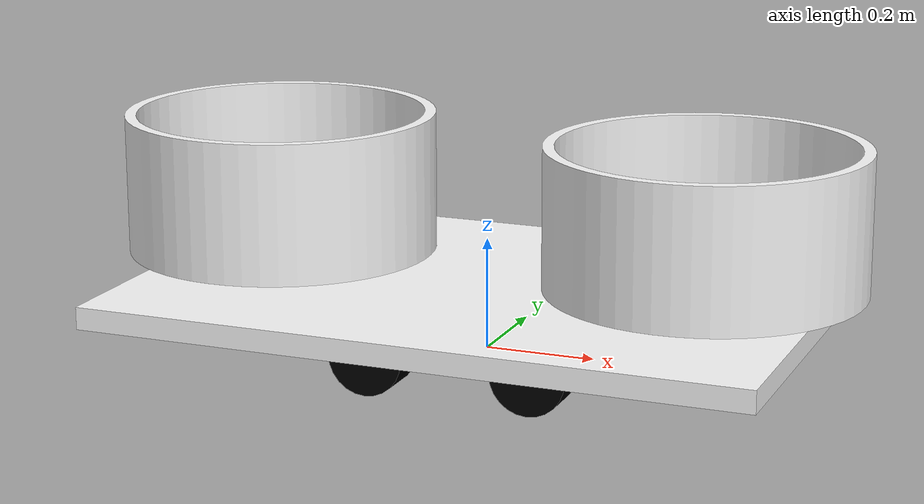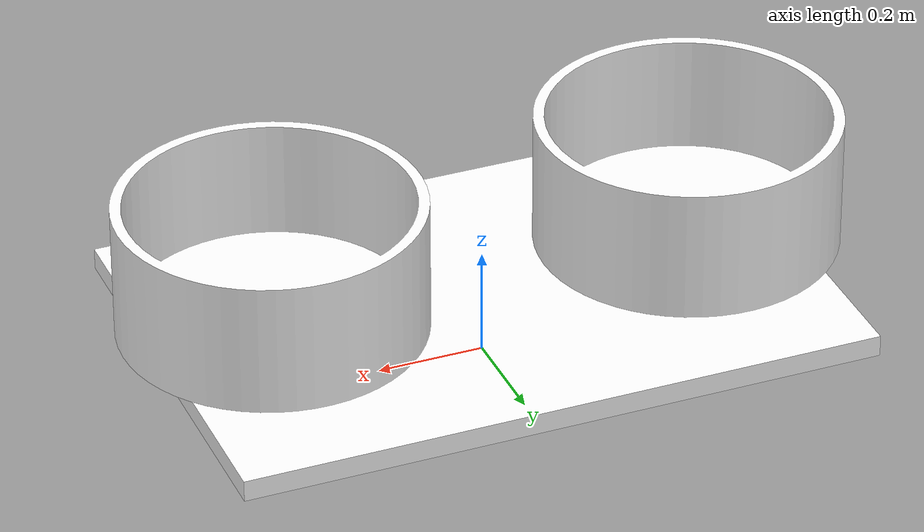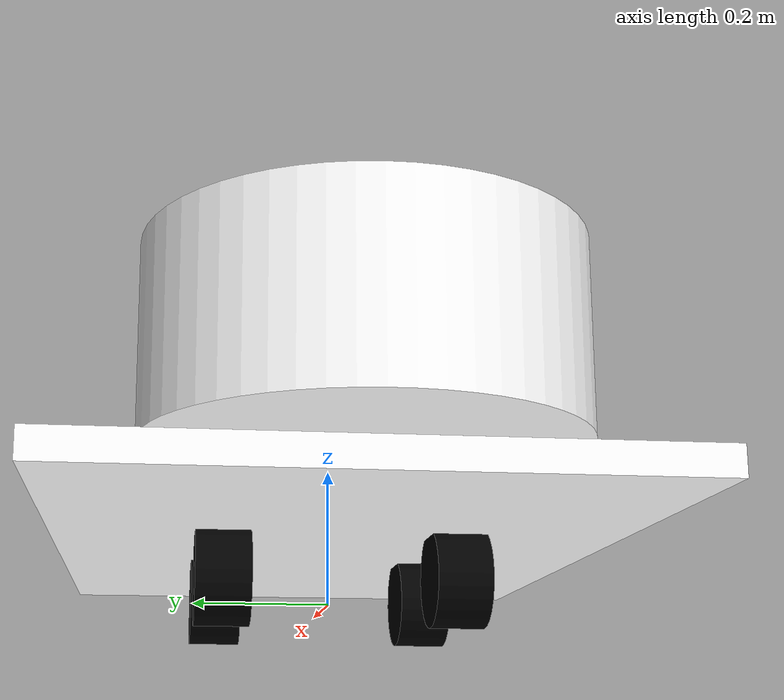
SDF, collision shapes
<sdf version='1.6'>
	<model name='r1_rover'>
    <link name='base_link'>
	    	<pose>0 0 0 0 -0 0</pose>
			<inertial>
				<pose>0 0 0 0 -0 0</pose>
				<mass>20.0</mass>
				<inertia>
					<ixx>0.37083</ixx>
					<ixy>0.0</ixy>
					<ixz>0.0</ixz>
					<iyy>0.37083</iyy>
					<iyz>0.0</iyz>
					<izz>0.53333</izz>
				</inertia>
			</inertial>
			<collision name='odom_fixed_joint_lump__base_link_collision'>
				<pose>0 0 0.1 0 -0 0</pose>
				<geometry>
					<box>
					<size>1.2 0.8 0.04</size> <!-- @HERO -->
					</box>
				</geometry>
				<surface>
					<contact>
						<ode/>
					</contact>
					<friction>
						<ode/>
					</friction>
				</surface>
			</collision>
			<visual name='odom_fixed_joint_lump__base_link_visual'>
				<pose>0 0 0 0 -0 0</pose>
				<geometry>
					<mesh>
						<scale>3 1 1</scale>
						<uri>model://r1_rover_custom/meshes/chassis_link.STL</uri>
					</mesh>
				</geometry>
				<material>
					<diffuse>1.0 1.0 1.0</diffuse>
					<specular>1.0 1.0 1.0</specular>
				</material>
			</visual>
			<visual name='odom_fixed_joint_lump__top_link_visual_1'>
				<pose>0 0 0.114486 0 -0 0</pose>
				<geometry>
					<mesh>
						<scale>3 2 1</scale>
						<uri>model://r1_rover_custom/meshes/top_link.STL</uri>
					</mesh>
				</geometry>
				<material>
					<diffuse>1.0 1.0 1.0</diffuse>
					<specular>1.0 1.0 1.0</specular>
				</material>
			</visual>

			<visual name='custom_basket_1'>
				<pose>0.4 0 0.4 3.141592 0 0</pose>
				<geometry>
					<mesh>
						<scale>1 1 1</scale>
						<uri>model://r1_rover_custom/meshes/cylinder.stl</uri>
					</mesh>
				</geometry>
				<material>
					<diffuse>1.0 1.0 1.0</diffuse>
					<specular>1.0 1.0 1.0</specular>
				</material>
			</visual>
			<collision name='custom_basket_1_collision'>
				<pose>0.4 0 0.4 3.141592 0 0</pose>
				<geometry>
					<mesh>
						<scale>1 1 1</scale>
						<uri>model://r1_rover_custom/meshes/cylinder.stl</uri>
					</mesh>
				</geometry>
				<surface>
					<contact>
						<ode/>
					</contact>
					<friction>
						<ode>
							<mu>5000.0</mu>
							<mu2>5000.0</mu2>
							<fdir1>1 1 0</fdir1>
							<slip1>0.0</slip1>
							<slip2>0.0</slip2>
						</ode>
					</friction>
				</surface>
			</collision>
			<visual name='custom_basket_2'>
				<pose>-0.4 0 0.4 3.141592 0 0</pose>
				<geometry>
					<mesh>
						<scale>1 1 1</scale>
						<uri>model://r1_rover_custom/meshes/cylinder.stl</uri>
					</mesh>
				</geometry>
				<material>
					<diffuse>1.0 1.0 1.0</diffuse>
					<specular>1.0 1.0 1.0</specular>
				</material>
			</visual>
			<collision name='custom_basket_2_collision'>
				<pose>-0.4 0 0.4 3.141592 0 0</pose>
				<geometry>
					<mesh>
						<scale>1 1 1</scale>
						<uri>model://r1_rover_custom/meshes/cylinder.stl</uri>
					</mesh>
				</geometry>
				<surface>
					<contact>
						<ode/>
					</contact>
					<friction>
						<ode>
							<mu>5000.0</mu>
							<mu2>5000.0</mu2>
							<fdir1>1 1 0</fdir1>
							<slip1>0.0</slip1>
							<slip2>0.0</slip2>
						</ode>
					</friction>
				</surface>
			</collision>

			<velocity_decay/>
			<velocity_decay/>
			<velocity_decay/>
			<velocity_decay/>
			<velocity_decay/>
			<gravity>1</gravity>
			<velocity_decay/>
			<sensor name="imu_sensor" type="imu">
				<always_on>1</always_on>
				<update_rate>250</update_rate>
				<imu>
					<angular_velocity>
						<x>
						<noise type="gaussian">
							<mean>0</mean>
							<stddev>0.0003394</stddev>
							<dynamic_bias_stddev>3.8785e-05</dynamic_bias_stddev>
							<dynamic_bias_correlation_time>1000</dynamic_bias_correlation_time>
						</noise>
						</x>
						<y>
						<noise type="gaussian">
							<mean>0</mean>
							<stddev>0.0003394</stddev>
							<dynamic_bias_stddev>3.8785e-05</dynamic_bias_stddev>
							<dynamic_bias_correlation_time>1000</dynamic_bias_correlation_time>
						</noise>
						</y>
						<z>
						<noise type="gaussian">
							<mean>0</mean>
							<stddev>0.0003394</stddev>
							<dynamic_bias_stddev>3.8785e-05</dynamic_bias_stddev>
							<dynamic_bias_correlation_time>1000</dynamic_bias_correlation_time>
						</noise>
						</z>
					</angular_velocity>
					<linear_acceleration>
						<x>
						<noise type="gaussian">
							<mean>0</mean>
							<stddev>0.004</stddev>
							<dynamic_bias_stddev>0.006</dynamic_bias_stddev>
							<dynamic_bias_correlation_time>300</dynamic_bias_correlation_time>
						</noise>
						</x>
						<y>
						<noise type="gaussian">
							<mean>0</mean>
							<stddev>0.004</stddev>
							<dynamic_bias_stddev>0.006</dynamic_bias_stddev>
							<dynamic_bias_correlation_time>300</dynamic_bias_correlation_time>
						</noise>
						</y>
						<z>
						<noise type="gaussian">
							<mean>0</mean>
							<stddev>0.004</stddev>
							<dynamic_bias_stddev>0.006</dynamic_bias_stddev>
							<dynamic_bias_correlation_time>300</dynamic_bias_correlation_time>
						</noise>
						</z>
					</linear_acceleration>
				</imu>
			</sensor>
			<sensor name="air_pressure_sensor" type="air_pressure">
				<always_on>1</always_on>
				<update_rate>50</update_rate>
				<air_pressure>
					<pressure>
						<noise type="gaussian">
							<mean>0</mean>
							<stddev>0.01</stddev>
						</noise>
					</pressure>
				</air_pressure>
			</sensor>
			<sensor name="navsat_sensor" type="navsat">
				<always_on>1</always_on>
				<update_rate>30</update_rate>
			</sensor>
		</link>
	  	<link name='lf_wheel_link'>
			<pose>0.15 0.16317 0.0215 0 -0 0</pose>
			<inertial>
				<pose>0 0 0 1.57079632679 0 0</pose>
				<mass>0.414</mass>
				<inertia>
					<ixx>0.00068682</ixx>
					<ixy>0</ixy>
					<ixz>0</ixz>
					<iyy>0.00068682</iyy>
					<iyz>0</iyz>
					<izz>0.00097299</izz>
				</inertia>
			</inertial>
			<collision name='lf_wheel_link_collision'>
				<pose>0 0 0 1.57079632679 0 0</pose>
				<geometry>
					<cylinder>
						<radius>0.0686</radius>
						<length>0.0762</length>
					</cylinder>
				</geometry>
				<max_contacts>1</max_contacts>
				<surface>
					<friction>
						<torsional>
							<coefficient>0.25</coefficient>
							<use_patch_radius>1</use_patch_radius>
							<surface_radius>0.0686</surface_radius>
						</torsional>
						<ode>
							<mu>1.0</mu>
							<mu2>1.0</mu2>
							<fdir1>1 0 0</fdir1>
							<slip1>0.0</slip1>
							<slip2>0.0</slip2>
						</ode>
					</friction>
					<bounce>
						<restitution_coefficient>0</restitution_coefficient>
						<threshold>1e6</threshold>
					</bounce>
					<contact>
						<ode>
							<min_depth>0.001</min_depth>
							<max_vel>0.0</max_vel>
							<kp>1.0e6</kp>
							<kd>100.0</kd>
						</ode>
					</contact>
				</surface>
			</collision>
			<visual name='lf_wheel_link_visual'>
				<pose>0 0 0 0 -0 0</pose>
				<geometry>
					<mesh>
						<scale>1 1 1</scale>
						<uri>model://r1_rover/meshes/wheel_link.STL</uri>
					</mesh>
				</geometry>
				<material>
					<diffuse>0.0 0.0 0.0</diffuse>
					<specular>0.5 0.5 0.5</specular>
				</material>
			</visual>
			<gravity>1</gravity>
			<velocity_decay/>
		</link>
		<joint name='motor_0' type='revolute'>
			<child>lf_wheel_link</child>
			<parent>base_link</parent>
			<axis>
				<xyz>0 1 0</xyz>
				<limit>
					<lower>-1e+16</lower>
					<upper>1e+16</upper>
				</limit>
				<dynamics>
					<spring_reference>0</spring_reference>
					<spring_stiffness>0</spring_stiffness>
				</dynamics>
				<use_parent_model_frame>1</use_parent_model_frame>
			</axis>
		</joint>
	  	<link name='lb_wheel_link'>
			<pose>-0.15 0.16317 0.0215 0 -0 0</pose>
			<inertial>
				<pose>0 0 0 1.57079632679 0 0</pose>
				<mass>0.414</mass>
				<inertia>
					<ixx>0.00068682</ixx>
					<ixy>0</ixy>
					<ixz>0</ixz>
					<iyy>0.00068682</iyy>
					<iyz>0</iyz>
					<izz>0.00097299</izz>
				</inertia>
			</inertial>
			<collision name='lb_wheel_link_collision'>
				<pose>0 0 0 1.57079632679 0 0</pose>
				<geometry>
					<cylinder>
						<radius>0.0686</radius>
						<length>0.0762</length>
					</cylinder>
				</geometry>
				<max_contacts>1</max_contacts>
				<surface>
					<friction>
					<torsional>
						<coefficient>0.25</coefficient>
						<use_patch_radius>1</use_patch_radius>
						<surface_radius>0.0686</surface_radius>
					</torsional>
					<ode>
						<mu>1.0</mu>
						<mu2>1.0</mu2>
						<fdir1>1 0 0</fdir1>
						<slip1>0.0</slip1>
						<slip2>0.0</slip2>
					</ode>
					</friction>
					<bounce>
						<restitution_coefficient>0</restitution_coefficient>
						<threshold>1e6</threshold>
					</bounce>
					<contact>
					<ode>
						<min_depth>0.001</min_depth>
						<max_vel>0.0</max_vel>
						<kp>1.0e6</kp>
						<kd>100.0</kd>
					</ode>
					</contact>
				</surface>
	    		</collision>
			<visual name='lb_wheel_link_visual'>
				<pose>0 0 0 0 -0 0</pose>
					<geometry>
						<mesh>
							<scale>1 1 1</scale>
							<uri>model://r1_rover/meshes/wheel_link.STL</uri>
						</mesh>
					</geometry>
					<material>
						<diffuse>0.0 0.0 0.0</diffuse>
						<specular>0.5 0.5 0.5</specular>
					</material>
			</visual>
			<gravity>1</gravity>
			<velocity_decay/>
	 	</link>
		<joint name='motor_1' type='revolute'>
			<child>lb_wheel_link</child>
			<parent>base_link</parent>
			<axis>
				<xyz>0 1 0</xyz>
				<limit>
					<lower>-1e+16</lower>
					<upper>1e+16</upper>
				</limit>
				<dynamics>
					<spring_reference>0</spring_reference>
					<spring_stiffness>0</spring_stiffness>
				</dynamics>
				<use_parent_model_frame>1</use_parent_model_frame>
			</axis>
		</joint>
	  	<link name='rf_wheel_link'>
			<pose>0.15 -0.16317 0.0215 0 -0 0</pose>
			<inertial>
				<pose>0 0 0 1.57079632679 0 0</pose>
				<mass>0.414</mass>
				<inertia>
					<ixx>0.00068682</ixx>
					<ixy>0</ixy>
					<ixz>0</ixz>
					<iyy>0.00068682</iyy>
					<iyz>0</iyz>
					<izz>0.00097299</izz>
				</inertia>
			</inertial>
			<collision name='rf_wheel_link_collision'>
				<pose>0 0 0 1.57079632679 0 0</pose>
				<geometry>
					<cylinder>
						<radius>0.0686</radius>
						<length>0.0762</length>
					</cylinder>
				</geometry>
				<max_contacts>1</max_contacts>
				<surface>
					<friction>
					<torsional>
					<coefficient>0.25</coefficient>
					<use_patch_radius>1</use_patch_radius>
					<surface_radius>0.0686</surface_radius>
					</torsional>
					<ode>
					<mu>1.0</mu>
					<mu2>1.0</mu2>
					<fdir1>1 0 0</fdir1>
					<slip1>0.0</slip1>
					<slip2>0.0</slip2>
					</ode>
					</friction>
					<bounce>
					<restitution_coefficient>0</restitution_coefficient>
					<threshold>1e6</threshold>
					</bounce>
					<contact>
					<ode>
					<min_depth>0.001</min_depth>
					<max_vel>0.0</max_vel>
					<kp>1.0e6</kp>
					<kd>100.0</kd>
					</ode>
					</contact>
				</surface>
			</collision>
			<visual name='rf_wheel_link_visual'>
				<pose>0 0 0 0 -0 0</pose>
				<geometry>
					<mesh>
						<scale>1 1 1</scale>
						<uri>model://r1_rover/meshes/wheel_link.STL</uri>
					</mesh>
		  		</geometry>
		  		<material>
		    		<diffuse>0.0 0.0 0.0</diffuse>
		    		<specular>0.5 0.5 0.5</specular>
		  		</material>
			</visual>
			<gravity>1</gravity>
			<velocity_decay/>
		</link>
		<joint name='motor_2' type='revolute'>
			<child>rf_wheel_link</child>
			<parent>base_link</parent>
			<axis>
				<xyz>0 -1 0</xyz>
				<limit>
					<lower>-1e+16</lower>
					<upper>1e+16</upper>
				</limit>
				<dynamics>
					<spring_reference>0</spring_reference>
					<spring_stiffness>0</spring_stiffness>
				</dynamics>
				<use_parent_model_frame>1</use_parent_model_frame>
			</axis>
		</joint>
	  	<link name='rb_wheel_link'>
			<pose>-0.15 -0.16317 0.0215 0 -0 0</pose>
			<inertial>
				<pose>0 0 0 1.57079632679 0 0</pose>
				<mass>0.414</mass>
				<inertia>
					<ixx>0.00068682</ixx>
					<ixy>0</ixy>
					<ixz>0</ixz>
					<iyy>0.00068682</iyy>
					<iyz>0</iyz>
					<izz>0.00097299</izz>
				</inertia>
			</inertial>
			<collision name='rb_wheel_link_collision'>
				<pose>0 0 0 1.57079632679 0 0</pose>
				<geometry>
					<cylinder>
						<radius>0.0686</radius>
						<length>0.0762</length>
					</cylinder>
				</geometry>
				<max_contacts>1</max_contacts>
				<surface>
					<friction>
						<torsional>
							<coefficient>0.25</coefficient>
							<use_patch_radius>1</use_patch_radius>
							<surface_radius>0.0686</surface_radius>
						</torsional>
						<ode>
							<mu>1.0</mu>
							<mu2>1.0</mu2>
							<fdir1>1 0 0</fdir1>
							<slip1>0.0</slip1>
							<slip2>0.0</slip2>
						</ode>
					</friction>
					<bounce>
						<restitution_coefficient>0</restitution_coefficient>
						<threshold>1e6</threshold>
					</bounce>
					<contact>
						<ode>
							<min_depth>0.001</min_depth>
							<kp>1e8</kp>
						</ode>
					</contact>
				</surface>
			</collision>
			<visual name='rb_wheel_link_visual'>
				<pose>0 0 0 0 -0 0</pose>
				<geometry>
					<mesh>
						<scale>1 1 1</scale>
						<uri>model://r1_rover/meshes/wheel_link.STL</uri>
					</mesh>
				</geometry>
				<material>
					<diffuse>0.0 0.0 0.0</diffuse>
					<specular>0.5 0.5 0.5</specular>
				</material>
			</visual>
			<gravity>1</gravity>
			<velocity_decay/>
	 	</link>
		<joint name='motor_3' type='revolute'>
			<child>rb_wheel_link</child>
			<parent>base_link</parent>
			<axis>
				<xyz>0 -1 0</xyz>
				<limit>
					<lower>-1e+16</lower>
					<upper>1e+16</upper>
				</limit>
				<dynamics>
					<spring_reference>0</spring_reference>
					<spring_stiffness>0</spring_stiffness>
				</dynamics>
				<use_parent_model_frame>1</use_parent_model_frame>
			</axis>
		</joint>
	  	<static>0</static>
		<plugin filename="gz-sim-joint-controller-system" name="gz::sim::systems::JointController">
			<joint_name>motor_0</joint_name>
			<sub_topic>command/motor_speed</sub_topic>
			<use_actuator_msg>true</use_actuator_msg>
			<actuator_number>1</actuator_number>
			<p_gain>20.0</p_gain>
		</plugin>
		<plugin filename="gz-sim-joint-controller-system" name="gz::sim::systems::JointController">
			<joint_name>motor_1</joint_name>
			<sub_topic>command/motor_speed</sub_topic>
			<use_actuator_msg>true</use_actuator_msg>
			<actuator_number>1</actuator_number>
			<p_gain>20.0</p_gain>
		</plugin>
		<plugin filename="gz-sim-joint-controller-system" name="gz::sim::systems::JointController">
			<joint_name>motor_2</joint_name>
			<sub_topic>command/motor_speed</sub_topic>
			<use_actuator_msg>true</use_actuator_msg>
			<actuator_number>0</actuator_number>
			<p_gain>20.0</p_gain>
		</plugin>
		<plugin filename="gz-sim-joint-controller-system" name="gz::sim::systems::JointController">
			<joint_name>motor_3</joint_name>
			<sub_topic>command/motor_speed</sub_topic>
			<use_actuator_msg>true</use_actuator_msg>
			<actuator_number>0</actuator_number>
			<p_gain>20.0</p_gain>
		</plugin>
		<plugin
			filename="gz-sim-joint-state-publisher-system"
			name="gz::sim::systems::JointStatePublisher">
			<joint_name>motor_0</joint_name>
			<joint_name>motor_1</joint_name>
			<joint_name>motor_2</joint_name>
			<joint_name>motor_3</joint_name>
		</plugin>
	</model>
</sdf>
